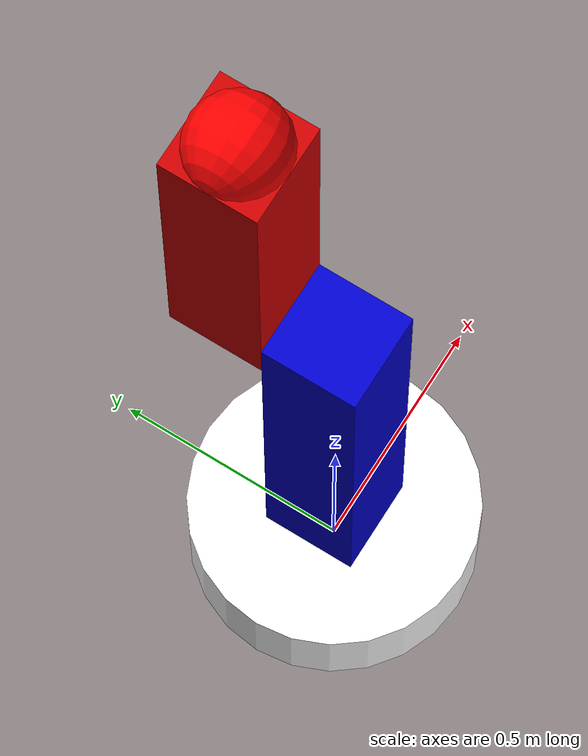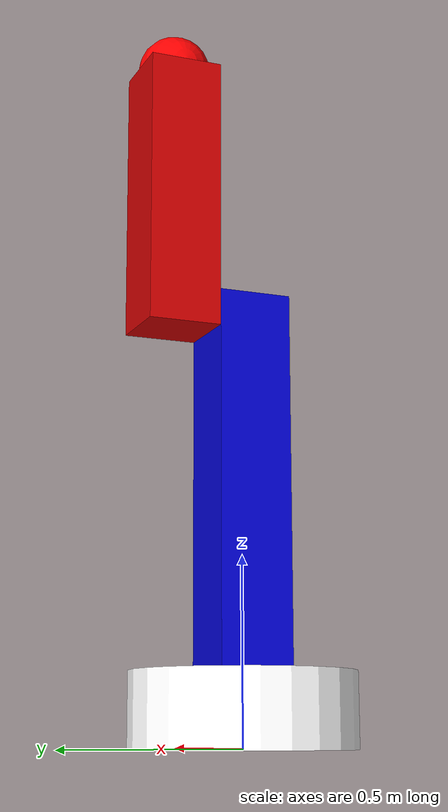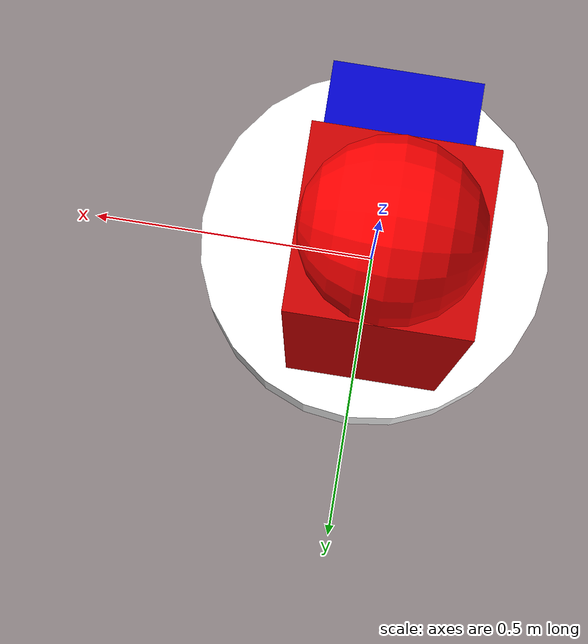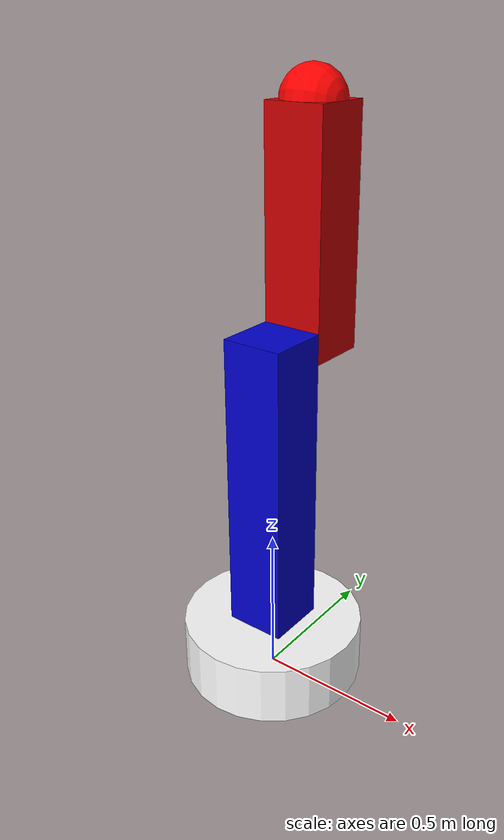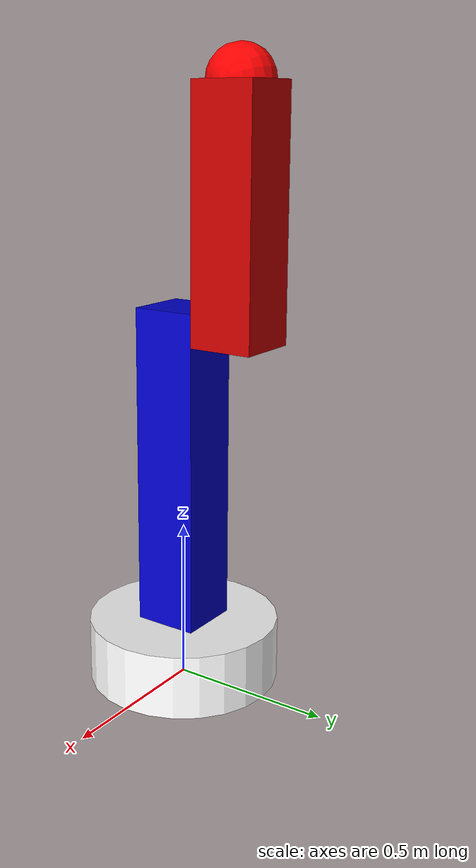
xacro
<?xml version="1.0"?>
<robot name="simple_arm" xmlns:xacro="http://www.ros.org/wiki/xacro">

    <!-- Define constants -->
    <xacro:property name="PI" value="3.14159" />
    <xacro:property name="mass1" value="50" />
    <xacro:property name="mass2" value="10" />
    <xacro:property name="mass3" value="1" />
    <xacro:property name="radius1" value="0.3" /> <!--base_link radius-->
    <xacro:property name="radius2" value="0.1" /> <!--link_1 radius-->
    <xacro:property name="radius3" value="0.1" /> <!--link_2 radius-->
    <xacro:property name="length1" value="0.2" /> <!--link_1 length-->
    <xacro:property name="length2" value="1.0" /> <!--link_2 length-->
    <xacro:property name="length3" value="0.75" /> <!--link_3 length-->
    <xacro:property name="camera_size" value="0.1" /> <!--camera size-->

    <!-- Import gazebo elements-->
    <xacro:include filename="$(find arm_robot_description)/urdf/arm_robot.gazebo" />

    <!-- LINKS -->

    <link name="world" />

    <link name="base_link">
        <visual>
            <origin xyz="0 0 ${length1/2}" rpy="0 0 0" />
            <geometry>
                <cylinder length="${length1}" radius="${radius1}" />
            </geometry>
            <material name="white">
                <color rgba="1.0 1.0 1.0 1.0" />
            </material>
        </visual>n for the joints seems fine, assuming your robot uses position control for its joints. Make sure
        <collision>
            <origin xyz="0 0 ${length1/2}" rpy="0 0 0" />
            <geometry>
                <cylinder length="${length1}" radius="${radius1}" />
            </geometry>
        </collision>
        <inertial>
            <origin xyz="0 0 ${length1/2}" rpy="0 0 0" />
            <mass value="${mass1}" />
            <inertia
                ixx="${mass1 * (3*radius1*radius1 + length1*length1) / 12}" ixy="0.0" ixz="0.0"
                iyy="${mass1 * (3*radius1*radius1 + length1*length1) / 12}" iyz="0.0"
                izz="${mass1 * (radius1*radius1) / 2}" />
        </inertial>
    </link>

    <link name="link_1">
        <visual>
            <origin xyz="0 0 ${length2/2}" rpy="0 0 0" />
            <geometry>
                <box size="${2*radius2} ${2*radius2} ${length2}" />
            </geometry>
            <material name="blue">
                <color rgba="0.0 0.0 0.8 1.0" />
            </material>
        </visual>
        <collision>
            <origin xyz="0 0 ${length2/2}" rpy="0 0 0" />
            <geometry>
                <box size="${2*radius2} ${2*radius2} ${length2}" />
            </geometry>
        </collision>
        <inertial>
            <origin xyz="0 0 ${length2/2}" rpy="0 0 0" />
            <mass value="${mass2}" />
            <inertia
                ixx="${mass2 / 12.0 * (2*radius2*2*radius2 + length2*length2)}" ixy="0.0" ixz="0.0"
                iyy="${mass2 / 12.0 * (length2*length2 + 2*radius2*2*radius2)}" iyz="0.0"
                izz="${mass2 / 12.0 * (2*radius2*2*radius2 + 2*radius2*2*radius2)}" />
        </inertial>
    </link>

    <link name="link_2">
        <visual>
            <origin xyz="0 0 ${length3/2}" rpy="0 0 0" />
            <geometry>
                <box size="${2*radius3} ${2*radius3} ${length3}" />
            </geometry>
            <material name="red">
                <color rgba="0.8 0.0 0.0 1.0" />
            </material>
        </visual>
        <collision>
            <origin xyz="0 0 ${length3/2}" rpy="0 0 0" />
            <geometry>
                <box size="${2*radius3} ${2*radius3} ${length3}" />
            </geometry>
        </collision>
        <inertial>
            <origin xyz="0 0 ${length3/2}" rpy="0 0 0" />
            <mass value="${mass3}" />
            <inertia
                ixx="${mass3 / 12.0 * (2*radius3*2*radius3 + length3*length3)}" ixy="0.0" ixz="0.0"
                iyy="${mass3 / 12.0 * (length3*length3 + 2*radius3*2*radius3)}" iyz="0.0"
                izz="${mass3 / 12.0 * (2*radius3*2*radius3 + 2*radius3*2*radius3)}" />
        </inertial>
    </link>

    <link name="camera_link">
        <collision>
            <origin xyz="0 0 0" rpy="0 0 0" />
            <geometry>
                <sphere radius="${camera_size}" />
            </geometry>
        </collision>
        <visual>
            <origin xyz="0 0 0" rpy="0 0 0" />
            <geometry>
                <sphere radius="${camera_size}" />
            </geometry>
            <material name="red">
                <color rgba="1.0 0 0 1.0" />
            </material>
        </visual>
        <inertial>
            <mass value="1e-5" />
            <origin xyz="0 0 0" rpy="0 0 0" />
            <inertia ixx="1e-6" ixy="0" ixz="0" iyy="1e-6" iyz="0" izz="1e-6" />
        </inertial>
    </link>

    <!-- JOINTS -->

    <joint name="fixed_base_joint" type="fixed">
        <parent link="world" />
        <child link="base_link" />
    </joint>

    <joint name="joint_1" type="revolute">
        <parent link="base_link" />
        <child link="link_1" />
        <axis xyz="0 0 1" />
        <origin xyz="0 0 ${length1}" rpy="0 0 0" />
        <limit upper="${2*PI}" lower="${-2*PI}" effort="30" velocity="1.0" />
    </joint>

    <joint name="joint_2" type="revolute">
        <parent link="link_1" />
        <child link="link_2" />
        <axis xyz="0 1 0" />
        <origin xyz="0 ${2*radius2} ${length2-radius2}" rpy="0 0 0" />
        <limit upper="${2*PI}" lower="${-2*PI}" effort="30" velocity="1.0" />
    </joint>

    <joint name="camera_joint" type="fixed">
        <axis xyz="0 0 1" />
        <origin xyz="0 0 ${length3}" rpy="0 -${PI/2} 0" />
        <parent link="link_2" />
        <child link="camera_link" />
    </joint>

    <!-- ROS2_CONTROL CONFIGURATION -->
    <ros2_control name="GazeboSystem" type="system">
        <hardware>
            <plugin>gazebo_ros2_control/GazeboSystem</plugin>
        </hardware>

        <joint name="joint_1">
            <command_interface name="effort" />
            <state_interface name="position" />
            <state_interface name="velocity" />
            <state_interface name="effort" />
        </joint>

        <joint name="joint_2">
            <command_interface name="effort" />
            <state_interface name="position" />
            <state_interface name="velocity" />
            <state_interface name="effort" />
        </joint>
    </ros2_control>

</robot>
